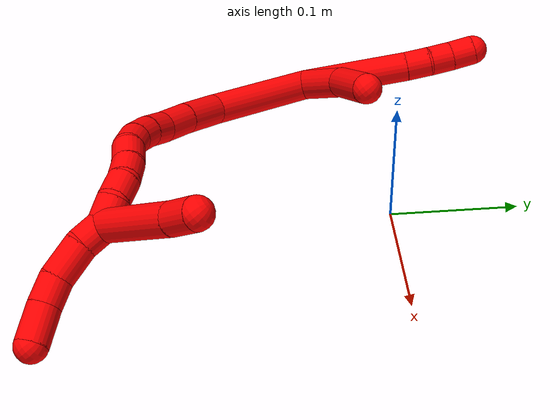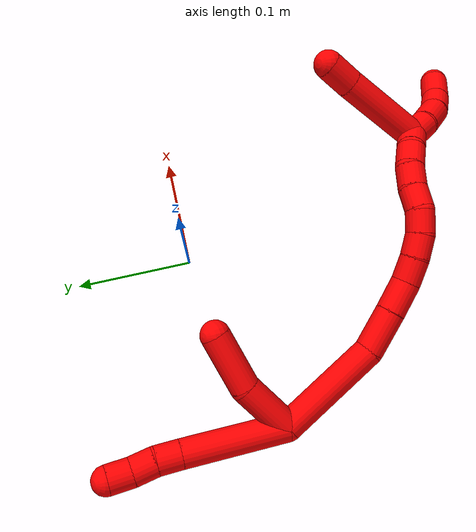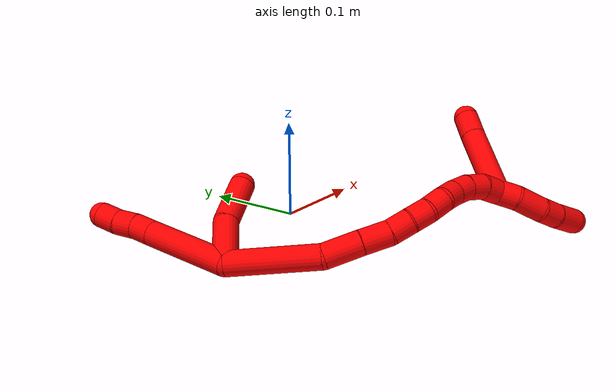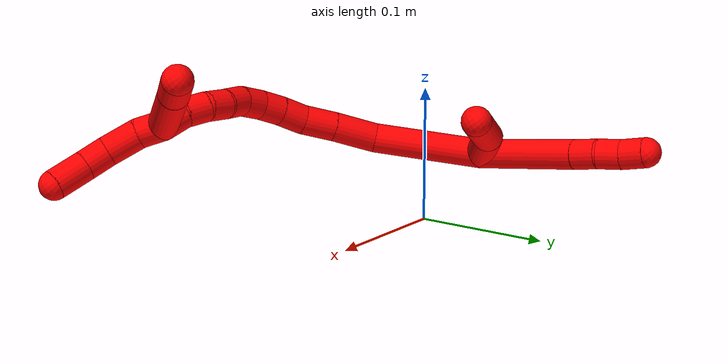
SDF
<sdf version="1.7">
 <world name="default">
  <model name="2">
   <static>0</static>
   <link name="2">
    <collision name="collision-cylinder-e_1_2_8">
     <pose>-0.006301 0.022215 0.038135 -0.527482 -0.14182 0.038355</pose>
     <geometry><cylinder><radius>0.0125</radius><length>0.089162</length></cylinder></geometry>
     <surface>
      <friction><ode><mu>1.16</mu><mu2>1.16</mu2><slip1>0</slip1><slip2>0</slip2></ode></friction>
      <contact><ode><kp>1e+06</kp><kd>1</kd><max_vel>0</max_vel><min_depth>0.001</min_depth></ode></contact>
     </surface>
    </collision>
    <visual name="visual-cylinder-e_1_2_8">
     <pose>-0.006301 0.022215 0.038135 -0.527482 -0.14182 0.038355</pose>
     <geometry><cylinder><radius>0.0125</radius><length>0.089162</length></cylinder></geometry>
     <material><ambient>1 0 0 1</ambient></material>
    </visual>
    <collision name="collision-cylinder-e_2_8_9">
     <pose>-0.01415 0.049208 0.085276 -0.487735 -0.150577 0.037533</pose>
     <geometry><cylinder><radius>0.0125</radius><length>0.020624</length></cylinder></geometry>
     <surface>
      <friction><ode><mu>1.16</mu><mu2>1.16</mu2><slip1>0</slip1><slip2>0</slip2></ode></friction>
      <contact><ode><kp>1e+06</kp><kd>1</kd><max_vel>0</max_vel><min_depth>0.001</min_depth></ode></contact>
     </surface>
    </collision>
    <visual name="visual-cylinder-e_2_8_9">
     <pose>-0.01415 0.049208 0.085276 -0.487735 -0.150577 0.037533</pose>
     <geometry><cylinder><radius>0.0125</radius><length>0.020624</length></cylinder></geometry>
     <material><ambient>1 0 0 1</ambient></material>
    </visual>
    <collision name="collision-cylinder-e_3_9_10">
     <pose>-0.018851 0.058446 0.102664 -0.489021 -0.320768 0.080682</pose>
     <geometry><cylinder><radius>0.0125</radius><length>0.02001</length></cylinder></geometry>
     <surface>
      <friction><ode><mu>1.16</mu><mu2>1.16</mu2><slip1>0</slip1><slip2>0</slip2></ode></friction>
      <contact><ode><kp>1e+06</kp><kd>1</kd><max_vel>0</max_vel><min_depth>0.001</min_depth></ode></contact>
     </surface>
    </collision>
    <visual name="visual-cylinder-e_3_9_10">
     <pose>-0.018851 0.058446 0.102664 -0.489021 -0.320768 0.080682</pose>
     <geometry><cylinder><radius>0.0125</radius><length>0.02001</length></cylinder></geometry>
     <material><ambient>1 0 0 1</ambient></material>
    </visual>
    <collision name="collision-cylinder-e_4_10_6">
     <pose>-0.023751 0.067046 0.120094 -0.429119 -0.173672 0.037936</pose>
     <geometry><cylinder><radius>0.0125</radius><length>0.020204</length></cylinder></geometry>
     <surface>
      <friction><ode><mu>1.16</mu><mu2>1.16</mu2><slip1>0</slip1><slip2>0</slip2></ode></friction>
      <contact><ode><kp>1e+06</kp><kd>1</kd><max_vel>0</max_vel><min_depth>0.001</min_depth></ode></contact>
     </surface>
    </collision>
    <visual name="visual-cylinder-e_4_10_6">
     <pose>-0.023751 0.067046 0.120094 -0.429119 -0.173672 0.037936</pose>
     <geometry><cylinder><radius>0.0125</radius><length>0.020204</length></cylinder></geometry>
     <material><ambient>1 0 0 1</ambient></material>
    </visual>
    <collision name="collision-cylinder-e_1_2_11">
     <pose>0.018332 0.007838 0.015418 -0.470315 0.814482 -0.205965</pose>
     <geometry><cylinder><radius>0.0125</radius><length>0.050406</length></cylinder></geometry>
     <surface>
      <friction><ode><mu>1.16</mu><mu2>1.16</mu2><slip1>0</slip1><slip2>0</slip2></ode></friction>
      <contact><ode><kp>1e+06</kp><kd>1</kd><max_vel>0</max_vel><min_depth>0.001</min_depth></ode></contact>
     </surface>
    </collision>
    <visual name="visual-cylinder-e_1_2_11">
     <pose>0.018332 0.007838 0.015418 -0.470315 0.814482 -0.205965</pose>
     <geometry><cylinder><radius>0.0125</radius><length>0.050406</length></cylinder></geometry>
     <material><ambient>1 0 0 1</ambient></material>
    </visual>
    <collision name="collision-cylinder-e_2_11_5">
     <pose>0.05884 0.02224 0.039781 -0.633077 1.10689 -0.399366</pose>
     <geometry><cylinder><radius>0.0125</radius><length>0.049594</length></cylinder></geometry>
     <surface>
      <friction><ode><mu>1.16</mu><mu2>1.16</mu2><slip1>0</slip1><slip2>0</slip2></ode></friction>
      <contact><ode><kp>1e+06</kp><kd>1</kd><max_vel>0</max_vel><min_depth>0.001</min_depth></ode></contact>
     </surface>
    </collision>
    <visual name="visual-cylinder-e_2_11_5">
     <pose>0.05884 0.02224 0.039781 -0.633077 1.10689 -0.399366</pose>
     <geometry><cylinder><radius>0.0125</radius><length>0.049594</length></cylinder></geometry>
     <material><ambient>1 0 0 1</ambient></material>
    </visual>
    <collision name="collision-cylinder-e_1_2_12">
     <pose>0.028485 -0.01777 -0.031369 2.62619 0.668681 1.84349</pose>
     <geometry><cylinder><radius>0.0125</radius><length>0.091894</length></cylinder></geometry>
     <surface>
      <friction><ode><mu>1.16</mu><mu2>1.16</mu2><slip1>0</slip1><slip2>0</slip2></ode></friction>
      <contact><ode><kp>1e+06</kp><kd>1</kd><max_vel>0</max_vel><min_depth>0.001</min_depth></ode></contact>
     </surface>
    </collision>
    <visual name="visual-cylinder-e_1_2_12">
     <pose>0.028485 -0.01777 -0.031369 2.62619 0.668681 1.84349</pose>
     <geometry><cylinder><radius>0.0125</radius><length>0.091894</length></cylinder></geometry>
     <material><ambient>1 0 0 1</ambient></material>
    </visual>
    <collision name="collision-cylinder-e_2_12_13">
     <pose>0.072766 -0.040877 -0.071052 2.57086 1.01181 2.16757</pose>
     <geometry><cylinder><radius>0.0125</radius><length>0.037264</length></cylinder></geometry>
     <surface>
      <friction><ode><mu>1.16</mu><mu2>1.16</mu2><slip1>0</slip1><slip2>0</slip2></ode></friction>
      <contact><ode><kp>1e+06</kp><kd>1</kd><max_vel>0</max_vel><min_depth>0.001</min_depth></ode></contact>
     </surface>
    </collision>
    <visual name="visual-cylinder-e_2_12_13">
     <pose>0.072766 -0.040877 -0.071052 2.57086 1.01181 2.16757</pose>
     <geometry><cylinder><radius>0.0125</radius><length>0.037264</length></cylinder></geometry>
     <material><ambient>1 0 0 1</ambient></material>
    </visual>
    <collision name="collision-cylinder-e_3_13_14">
     <pose>0.100518 -0.049568 -0.085862 2.66503 1.02209 2.32404</pose>
     <geometry><cylinder><radius>0.0125</radius><length>0.028027</length></cylinder></geometry>
     <surface>
      <friction><ode><mu>1.16</mu><mu2>1.16</mu2><slip1>0</slip1><slip2>0</slip2></ode></friction>
      <contact><ode><kp>1e+06</kp><kd>1</kd><max_vel>0</max_vel><min_depth>0.001</min_depth></ode></contact>
     </surface>
    </collision>
    <visual name="visual-cylinder-e_3_13_14">
     <pose>0.100518 -0.049568 -0.085862 2.66503 1.02209 2.32404</pose>
     <geometry><cylinder><radius>0.0125</radius><length>0.028027</length></cylinder></geometry>
     <material><ambient>1 0 0 1</ambient></material>
    </visual>
    <collision name="collision-cylinder-e_4_14_15">
     <pose>0.122589 -0.055574 -0.095311 2.40993 1.19675 2.11774</pose>
     <geometry><cylinder><radius>0.0125</radius><length>0.021733</length></cylinder></geometry>
     <surface>
      <friction><ode><mu>1.16</mu><mu2>1.16</mu2><slip1>0</slip1><slip2>0</slip2></ode></friction>
      <contact><ode><kp>1e+06</kp><kd>1</kd><max_vel>0</max_vel><min_depth>0.001</min_depth></ode></contact>
     </surface>
    </collision>
    <visual name="visual-cylinder-e_4_14_15">
     <pose>0.122589 -0.055574 -0.095311 2.40993 1.19675 2.11774</pose>
     <geometry><cylinder><radius>0.0125</radius><length>0.021733</length></cylinder></geometry>
     <material><ambient>1 0 0 1</ambient></material>
    </visual>
    <collision name="collision-cylinder-e_5_15_16">
     <pose>0.142469 -0.059374 -0.100936 2.73573 1.2814 2.60307</pose>
     <geometry><cylinder><radius>0.0125</radius><length>0.020375</length></cylinder></geometry>
     <surface>
      <friction><ode><mu>1.16</mu><mu2>1.16</mu2><slip1>0</slip1><slip2>0</slip2></ode></friction>
      <contact><ode><kp>1e+06</kp><kd>1</kd><max_vel>0</max_vel><min_depth>0.001</min_depth></ode></contact>
     </surface>
    </collision>
    <visual name="visual-cylinder-e_5_15_16">
     <pose>0.142469 -0.059374 -0.100936 2.73573 1.2814 2.60307</pose>
     <geometry><cylinder><radius>0.0125</radius><length>0.020375</length></cylinder></geometry>
     <material><ambient>1 0 0 1</ambient></material>
    </visual>
    <collision name="collision-cylinder-e_6_16_17">
     <pose>0.162129 -0.059425 -0.105053 -2.49269 1.38941 -2.37433</pose>
     <geometry><cylinder><radius>0.0125</radius><length>0.020123</length></cylinder></geometry>
     <surface>
      <friction><ode><mu>1.16</mu><mu2>1.16</mu2><slip1>0</slip1><slip2>0</slip2></ode></friction>
      <contact><ode><kp>1e+06</kp><kd>1</kd><max_vel>0</max_vel><min_depth>0.001</min_depth></ode></contact>
     </surface>
    </collision>
    <visual name="visual-cylinder-e_6_16_17">
     <pose>0.162129 -0.059425 -0.105053 -2.49269 1.38941 -2.37433</pose>
     <geometry><cylinder><radius>0.0125</radius><length>0.020123</length></cylinder></geometry>
     <material><ambient>1 0 0 1</ambient></material>
    </visual>
    <collision name="collision-cylinder-e_7_17_18">
     <pose>0.180998 -0.053976 -0.107784 -1.8578 1.10248 -1.37662</pose>
     <geometry><cylinder><radius>0.0125</radius><length>0.020109</length></cylinder></geometry>
     <surface>
      <friction><ode><mu>1.16</mu><mu2>1.16</mu2><slip1>0</slip1><slip2>0</slip2></ode></friction>
      <contact><ode><kp>1e+06</kp><kd>1</kd><max_vel>0</max_vel><min_depth>0.001</min_depth></ode></contact>
     </surface>
    </collision>
    <visual name="visual-cylinder-e_7_17_18">
     <pose>0.180998 -0.053976 -0.107784 -1.8578 1.10248 -1.37662</pose>
     <geometry><cylinder><radius>0.0125</radius><length>0.020109</length></cylinder></geometry>
     <material><ambient>1 0 0 1</ambient></material>
    </visual>
    <collision name="collision-cylinder-e_8_18_19">
     <pose>0.199076 -0.046384 -0.111675 -2.24847 1.14253 -1.86108</pose>
     <geometry><cylinder><radius>0.0125</radius><length>0.020021</length></cylinder></geometry>
     <surface>
      <friction><ode><mu>1.16</mu><mu2>1.16</mu2><slip1>0</slip1><slip2>0</slip2></ode></friction>
      <contact><ode><kp>1e+06</kp><kd>1</kd><max_vel>0</max_vel><min_depth>0.001</min_depth></ode></contact>
     </surface>
    </collision>
    <visual name="visual-cylinder-e_8_18_19">
     <pose>0.199076 -0.046384 -0.111675 -2.24847 1.14253 -1.86108</pose>
     <geometry><cylinder><radius>0.0125</radius><length>0.020021</length></cylinder></geometry>
     <material><ambient>1 0 0 1</ambient></material>
    </visual>
    <collision name="collision-cylinder-e_9_19_20">
     <pose>0.216312 -0.040238 -0.119425 -2.62717 0.942327 -2.18832</pose>
     <geometry><cylinder><radius>0.0125</radius><length>0.020099</length></cylinder></geometry>
     <surface>
      <friction><ode><mu>1.16</mu><mu2>1.16</mu2><slip1>0</slip1><slip2>0</slip2></ode></friction>
      <contact><ode><kp>1e+06</kp><kd>1</kd><max_vel>0</max_vel><min_depth>0.001</min_depth></ode></contact>
     </surface>
    </collision>
    <visual name="visual-cylinder-e_9_19_20">
     <pose>0.216312 -0.040238 -0.119425 -2.62717 0.942327 -2.18832</pose>
     <geometry><cylinder><radius>0.0125</radius><length>0.020099</length></cylinder></geometry>
     <material><ambient>1 0 0 1</ambient></material>
    </visual>
    <collision name="collision-cylinder-e_10_20_1">
     <pose>0.230565 -0.032996 -0.131445 -2.57907 0.645601 -1.71676</pose>
     <geometry><cylinder><radius>0.0125</radius><length>0.020355</length></cylinder></geometry>
     <surface>
      <friction><ode><mu>1.16</mu><mu2>1.16</mu2><slip1>0</slip1><slip2>0</slip2></ode></friction>
      <contact><ode><kp>1e+06</kp><kd>1</kd><max_vel>0</max_vel><min_depth>0.001</min_depth></ode></contact>
     </surface>
    </collision>
    <visual name="visual-cylinder-e_10_20_1">
     <pose>0.230565 -0.032996 -0.131445 -2.57907 0.645601 -1.71676</pose>
     <geometry><cylinder><radius>0.0125</radius><length>0.020355</length></cylinder></geometry>
     <material><ambient>1 0 0 1</ambient></material>
    </visual>
    <collision name="collision-cylinder-e_1_1_21">
     <pose>0.258638 -0.016852 -0.110565 -0.402252 0.629067 -0.132465</pose>
     <geometry><cylinder><radius>0.0125</radius><length>0.074611</length></cylinder></geometry>
     <surface>
      <friction><ode><mu>1.16</mu><mu2>1.16</mu2><slip1>0</slip1><slip2>0</slip2></ode></friction>
      <contact><ode><kp>1e+06</kp><kd>1</kd><max_vel>0</max_vel><min_depth>0.001</min_depth></ode></contact>
     </surface>
    </collision>
    <visual name="visual-cylinder-e_1_1_21">
     <pose>0.258638 -0.016852 -0.110565 -0.402252 0.629067 -0.132465</pose>
     <geometry><cylinder><radius>0.0125</radius><length>0.074611</length></cylinder></geometry>
     <material><ambient>1 0 0 1</ambient></material>
    </visual>
    <collision name="collision-cylinder-e_2_21_4">
     <pose>0.28817 -0.002008 -0.073089 -0.302617 0.640024 -0.100975</pose>
     <geometry><cylinder><radius>0.0125</radius><length>0.025389</length></cylinder></geometry>
     <surface>
      <friction><ode><mu>1.16</mu><mu2>1.16</mu2><slip1>0</slip1><slip2>0</slip2></ode></friction>
      <contact><ode><kp>1e+06</kp><kd>1</kd><max_vel>0</max_vel><min_depth>0.001</min_depth></ode></contact>
     </surface>
    </collision>
    <visual name="visual-cylinder-e_2_21_4">
     <pose>0.28817 -0.002008 -0.073089 -0.302617 0.640024 -0.100975</pose>
     <geometry><cylinder><radius>0.0125</radius><length>0.025389</length></cylinder></geometry>
     <material><ambient>1 0 0 1</ambient></material>
    </visual>
    <collision name="collision-cylinder-e_1_1_22">
     <pose>0.241511 -0.028761 -0.147373 3.13052 0.489557 3.09728</pose>
     <geometry><cylinder><radius>0.0125</radius><length>0.020513</length></cylinder></geometry>
     <surface>
      <friction><ode><mu>1.16</mu><mu2>1.16</mu2><slip1>0</slip1><slip2>0</slip2></ode></friction>
      <contact><ode><kp>1e+06</kp><kd>1</kd><max_vel>0</max_vel><min_depth>0.001</min_depth></ode></contact>
     </surface>
    </collision>
    <visual name="visual-cylinder-e_1_1_22">
     <pose>0.241511 -0.028761 -0.147373 3.13052 0.489557 3.09728</pose>
     <geometry><cylinder><radius>0.0125</radius><length>0.020513</length></cylinder></geometry>
     <material><ambient>1 0 0 1</ambient></material>
    </visual>
    <collision name="collision-cylinder-e_2_22_23">
     <pose>0.252668 -0.025595 -0.169018 -2.88785 0.453054 -2.13063</pose>
     <geometry><cylinder><radius>0.0125</radius><length>0.02894</length></cylinder></geometry>
     <surface>
      <friction><ode><mu>1.16</mu><mu2>1.16</mu2><slip1>0</slip1><slip2>0</slip2></ode></friction>
      <contact><ode><kp>1e+06</kp><kd>1</kd><max_vel>0</max_vel><min_depth>0.001</min_depth></ode></contact>
     </surface>
    </collision>
    <visual name="visual-cylinder-e_2_22_23">
     <pose>0.252668 -0.025595 -0.169018 -2.88785 0.453054 -2.13063</pose>
     <geometry><cylinder><radius>0.0125</radius><length>0.02894</length></cylinder></geometry>
     <material><ambient>1 0 0 1</ambient></material>
    </visual>
    <collision name="collision-cylinder-e_3_23_24">
     <pose>0.264969 -0.017873 -0.189305 -2.61662 0.591115 -1.69553</pose>
     <geometry><cylinder><radius>0.0125</radius><length>0.021416</length></cylinder></geometry>
     <surface>
      <friction><ode><mu>1.16</mu><mu2>1.16</mu2><slip1>0</slip1><slip2>0</slip2></ode></friction>
      <contact><ode><kp>1e+06</kp><kd>1</kd><max_vel>0</max_vel><min_depth>0.001</min_depth></ode></contact>
     </surface>
    </collision>
    <visual name="visual-cylinder-e_3_23_24">
     <pose>0.264969 -0.017873 -0.189305 -2.61662 0.591115 -1.69553</pose>
     <geometry><cylinder><radius>0.0125</radius><length>0.021416</length></cylinder></geometry>
     <material><ambient>1 0 0 1</ambient></material>
    </visual>
    <collision name="collision-cylinder-e_4_24_3">
     <pose>0.280078 -0.006532 -0.206009 -2.48915 0.678479 -1.61296</pose>
     <geometry><cylinder><radius>0.0125</radius><length>0.029132</length></cylinder></geometry>
     <surface>
      <friction><ode><mu>1.16</mu><mu2>1.16</mu2><slip1>0</slip1><slip2>0</slip2></ode></friction>
      <contact><ode><kp>1e+06</kp><kd>1</kd><max_vel>0</max_vel><min_depth>0.001</min_depth></ode></contact>
     </surface>
    </collision>
    <visual name="visual-cylinder-e_4_24_3">
     <pose>0.280078 -0.006532 -0.206009 -2.48915 0.678479 -1.61296</pose>
     <geometry><cylinder><radius>0.0125</radius><length>0.029132</length></cylinder></geometry>
     <material><ambient>1 0 0 1</ambient></material>
    </visual>
    <collision name="collision-sphere-3">
     <pose>0.289219 0.000353 -0.21502 0 -0 0</pose>
     <geometry><sphere><radius>0.0125</radius></sphere></geometry>
     <surface>
      <friction><ode><mu>1.16</mu><mu2>1.16</mu2><slip1>0</slip1><slip2>0</slip2></ode></friction>
      <contact><ode><kp>1e+06</kp><kd>1</kd><max_vel>0</max_vel><min_depth>0.001</min_depth></ode></contact>
     </surface>
    </collision>
    <visual name="visual-sphere-3">
     <pose>0.289219 0.000353 -0.21502 0 -0 0</pose>
     <geometry><sphere><radius>0.0125</radius></sphere></geometry>
     <material><ambient>1 0 0 1</ambient></material>
    </visual>
    <collision name="collision-sphere-24">
     <pose>0.270936 -0.013417 -0.196999 0 -0 0</pose>
     <geometry><sphere><radius>0.0125</radius></sphere></geometry>
     <surface>
      <friction><ode><mu>1.16</mu><mu2>1.16</mu2><slip1>0</slip1><slip2>0</slip2></ode></friction>
      <contact><ode><kp>1e+06</kp><kd>1</kd><max_vel>0</max_vel><min_depth>0.001</min_depth></ode></contact>
     </surface>
    </collision>
    <visual name="visual-sphere-24">
     <pose>0.270936 -0.013417 -0.196999 0 -0 0</pose>
     <geometry><sphere><radius>0.0125</radius></sphere></geometry>
     <material><ambient>1 0 0 1</ambient></material>
    </visual>
    <collision name="collision-sphere-23">
     <pose>0.259001 -0.022329 -0.181611 0 -0 0</pose>
     <geometry><sphere><radius>0.0125</radius></sphere></geometry>
     <surface>
      <friction><ode><mu>1.16</mu><mu2>1.16</mu2><slip1>0</slip1><slip2>0</slip2></ode></friction>
      <contact><ode><kp>1e+06</kp><kd>1</kd><max_vel>0</max_vel><min_depth>0.001</min_depth></ode></contact>
     </surface>
    </collision>
    <visual name="visual-sphere-23">
     <pose>0.259001 -0.022329 -0.181611 0 -0 0</pose>
     <geometry><sphere><radius>0.0125</radius></sphere></geometry>
     <material><ambient>1 0 0 1</ambient></material>
    </visual>
    <collision name="collision-sphere-22">
     <pose>0.246334 -0.028861 -0.156424 0 -0 0</pose>
     <geometry><sphere><radius>0.0125</radius></sphere></geometry>
     <surface>
      <friction><ode><mu>1.16</mu><mu2>1.16</mu2><slip1>0</slip1><slip2>0</slip2></ode></friction>
      <contact><ode><kp>1e+06</kp><kd>1</kd><max_vel>0</max_vel><min_depth>0.001</min_depth></ode></contact>
     </surface>
    </collision>
    <visual name="visual-sphere-22">
     <pose>0.246334 -0.028861 -0.156424 0 -0 0</pose>
     <geometry><sphere><radius>0.0125</radius></sphere></geometry>
     <material><ambient>1 0 0 1</ambient></material>
    </visual>
    <collision name="collision-sphere-4">
     <pose>0.295751 0.001026 -0.06337 0 -0 0</pose>
     <geometry><sphere><radius>0.0125</radius></sphere></geometry>
     <surface>
      <friction><ode><mu>1.16</mu><mu2>1.16</mu2><slip1>0</slip1><slip2>0</slip2></ode></friction>
      <contact><ode><kp>1e+06</kp><kd>1</kd><max_vel>0</max_vel><min_depth>0.001</min_depth></ode></contact>
     </surface>
    </collision>
    <visual name="visual-sphere-4">
     <pose>0.295751 0.001026 -0.06337 0 -0 0</pose>
     <geometry><sphere><radius>0.0125</radius></sphere></geometry>
     <material><ambient>1 0 0 1</ambient></material>
    </visual>
    <collision name="collision-sphere-21">
     <pose>0.280588 -0.005042 -0.082809 0 -0 0</pose>
     <geometry><sphere><radius>0.0125</radius></sphere></geometry>
     <surface>
      <friction><ode><mu>1.16</mu><mu2>1.16</mu2><slip1>0</slip1><slip2>0</slip2></ode></friction>
      <contact><ode><kp>1e+06</kp><kd>1</kd><max_vel>0</max_vel><min_depth>0.001</min_depth></ode></contact>
     </surface>
    </collision>
    <visual name="visual-sphere-21">
     <pose>0.280588 -0.005042 -0.082809 0 -0 0</pose>
     <geometry><sphere><radius>0.0125</radius></sphere></geometry>
     <material><ambient>1 0 0 1</ambient></material>
    </visual>
    <collision name="collision-sphere-1">
     <pose>0.236688 -0.028661 -0.138322 0 -0 0</pose>
     <geometry><sphere><radius>0.0125</radius></sphere></geometry>
     <surface>
      <friction><ode><mu>1.16</mu><mu2>1.16</mu2><slip1>0</slip1><slip2>0</slip2></ode></friction>
      <contact><ode><kp>1e+06</kp><kd>1</kd><max_vel>0</max_vel><min_depth>0.001</min_depth></ode></contact>
     </surface>
    </collision>
    <visual name="visual-sphere-1">
     <pose>0.236688 -0.028661 -0.138322 0 -0 0</pose>
     <geometry><sphere><radius>0.0125</radius></sphere></geometry>
     <material><ambient>1 0 0 1</ambient></material>
    </visual>
    <collision name="collision-sphere-11">
     <pose>0.036664 0.015676 0.030836 0 -0 0</pose>
     <geometry><sphere><radius>0.0125</radius></sphere></geometry>
     <surface>
      <friction><ode><mu>1.16</mu><mu2>1.16</mu2><slip1>0</slip1><slip2>0</slip2></ode></friction>
      <contact><ode><kp>1e+06</kp><kd>1</kd><max_vel>0</max_vel><min_depth>0.001</min_depth></ode></contact>
     </surface>
    </collision>
    <visual name="visual-sphere-11">
     <pose>0.036664 0.015676 0.030836 0 -0 0</pose>
     <geometry><sphere><radius>0.0125</radius></sphere></geometry>
     <material><ambient>1 0 0 1</ambient></material>
    </visual>
    <collision name="collision-sphere-6">
     <pose>-0.025497 0.071186 0.129142 0 -0 0</pose>
     <geometry><sphere><radius>0.0125</radius></sphere></geometry>
     <surface>
      <friction><ode><mu>1.16</mu><mu2>1.16</mu2><slip1>0</slip1><slip2>0</slip2></ode></friction>
      <contact><ode><kp>1e+06</kp><kd>1</kd><max_vel>0</max_vel><min_depth>0.001</min_depth></ode></contact>
     </surface>
    </collision>
    <visual name="visual-sphere-6">
     <pose>-0.025497 0.071186 0.129142 0 -0 0</pose>
     <geometry><sphere><radius>0.0125</radius></sphere></geometry>
     <material><ambient>1 0 0 1</ambient></material>
    </visual>
    <collision name="collision-sphere-10">
     <pose>-0.022005 0.062906 0.111046 0 -0 0</pose>
     <geometry><sphere><radius>0.0125</radius></sphere></geometry>
     <surface>
      <friction><ode><mu>1.16</mu><mu2>1.16</mu2><slip1>0</slip1><slip2>0</slip2></ode></friction>
      <contact><ode><kp>1e+06</kp><kd>1</kd><max_vel>0</max_vel><min_depth>0.001</min_depth></ode></contact>
     </surface>
    </collision>
    <visual name="visual-sphere-10">
     <pose>-0.022005 0.062906 0.111046 0 -0 0</pose>
     <geometry><sphere><radius>0.0125</radius></sphere></geometry>
     <material><ambient>1 0 0 1</ambient></material>
    </visual>
    <collision name="collision-sphere-9">
     <pose>-0.015696 0.053985 0.094282 0 -0 0</pose>
     <geometry><sphere><radius>0.0125</radius></sphere></geometry>
     <surface>
      <friction><ode><mu>1.16</mu><mu2>1.16</mu2><slip1>0</slip1><slip2>0</slip2></ode></friction>
      <contact><ode><kp>1e+06</kp><kd>1</kd><max_vel>0</max_vel><min_depth>0.001</min_depth></ode></contact>
     </surface>
    </collision>
    <visual name="visual-sphere-9">
     <pose>-0.015696 0.053985 0.094282 0 -0 0</pose>
     <geometry><sphere><radius>0.0125</radius></sphere></geometry>
     <material><ambient>1 0 0 1</ambient></material>
    </visual>
    <collision name="collision-sphere-2">
     <geometry><sphere><radius>0.0125</radius></sphere></geometry>
     <surface>
      <friction><ode><mu>1.16</mu><mu2>1.16</mu2><slip1>0</slip1><slip2>0</slip2></ode></friction>
      <contact><ode><kp>1e+06</kp><kd>1</kd><max_vel>0</max_vel><min_depth>0.001</min_depth></ode></contact>
     </surface>
    </collision>
    <visual name="visual-sphere-2">
     <geometry><sphere><radius>0.0125</radius></sphere></geometry>
     <material><ambient>1 0 0 1</ambient></material>
    </visual>
    <collision name="collision-sphere-19">
     <pose>0.208182 -0.043145 -0.114282 0 -0 0</pose>
     <geometry><sphere><radius>0.0125</radius></sphere></geometry>
     <surface>
      <friction><ode><mu>1.16</mu><mu2>1.16</mu2><slip1>0</slip1><slip2>0</slip2></ode></friction>
      <contact><ode><kp>1e+06</kp><kd>1</kd><max_vel>0</max_vel><min_depth>0.001</min_depth></ode></contact>
     </surface>
    </collision>
    <visual name="visual-sphere-19">
     <pose>0.208182 -0.043145 -0.114282 0 -0 0</pose>
     <geometry><sphere><radius>0.0125</radius></sphere></geometry>
     <material><ambient>1 0 0 1</ambient></material>
    </visual>
    <collision name="collision-sphere-8">
     <pose>-0.012603 0.04443 0.076269 0 -0 0</pose>
     <geometry><sphere><radius>0.0125</radius></sphere></geometry>
     <surface>
      <friction><ode><mu>1.16</mu><mu2>1.16</mu2><slip1>0</slip1><slip2>0</slip2></ode></friction>
      <contact><ode><kp>1e+06</kp><kd>1</kd><max_vel>0</max_vel><min_depth>0.001</min_depth></ode></contact>
     </surface>
    </collision>
    <visual name="visual-sphere-8">
     <pose>-0.012603 0.04443 0.076269 0 -0 0</pose>
     <geometry><sphere><radius>0.0125</radius></sphere></geometry>
     <material><ambient>1 0 0 1</ambient></material>
    </visual>
    <collision name="collision-sphere-5">
     <pose>0.081016 0.028804 0.048726 0 -0 0</pose>
     <geometry><sphere><radius>0.0125</radius></sphere></geometry>
     <surface>
      <friction><ode><mu>1.16</mu><mu2>1.16</mu2><slip1>0</slip1><slip2>0</slip2></ode></friction>
      <contact><ode><kp>1e+06</kp><kd>1</kd><max_vel>0</max_vel><min_depth>0.001</min_depth></ode></contact>
     </surface>
    </collision>
    <visual name="visual-sphere-5">
     <pose>0.081016 0.028804 0.048726 0 -0 0</pose>
     <geometry><sphere><radius>0.0125</radius></sphere></geometry>
     <material><ambient>1 0 0 1</ambient></material>
    </visual>
    <collision name="collision-sphere-12">
     <pose>0.05697 -0.035539 -0.062737 0 -0 0</pose>
     <geometry><sphere><radius>0.0125</radius></sphere></geometry>
     <surface>
      <friction><ode><mu>1.16</mu><mu2>1.16</mu2><slip1>0</slip1><slip2>0</slip2></ode></friction>
      <contact><ode><kp>1e+06</kp><kd>1</kd><max_vel>0</max_vel><min_depth>0.001</min_depth></ode></contact>
     </surface>
    </collision>
    <visual name="visual-sphere-12">
     <pose>0.05697 -0.035539 -0.062737 0 -0 0</pose>
     <geometry><sphere><radius>0.0125</radius></sphere></geometry>
     <material><ambient>1 0 0 1</ambient></material>
    </visual>
    <collision name="collision-sphere-13">
     <pose>0.088562 -0.046215 -0.079367 0 -0 0</pose>
     <geometry><sphere><radius>0.0125</radius></sphere></geometry>
     <surface>
      <friction><ode><mu>1.16</mu><mu2>1.16</mu2><slip1>0</slip1><slip2>0</slip2></ode></friction>
      <contact><ode><kp>1e+06</kp><kd>1</kd><max_vel>0</max_vel><min_depth>0.001</min_depth></ode></contact>
     </surface>
    </collision>
    <visual name="visual-sphere-13">
     <pose>0.088562 -0.046215 -0.079367 0 -0 0</pose>
     <geometry><sphere><radius>0.0125</radius></sphere></geometry>
     <material><ambient>1 0 0 1</ambient></material>
    </visual>
    <collision name="collision-sphere-14">
     <pose>0.112474 -0.052921 -0.092356 0 -0 0</pose>
     <geometry><sphere><radius>0.0125</radius></sphere></geometry>
     <surface>
      <friction><ode><mu>1.16</mu><mu2>1.16</mu2><slip1>0</slip1><slip2>0</slip2></ode></friction>
      <contact><ode><kp>1e+06</kp><kd>1</kd><max_vel>0</max_vel><min_depth>0.001</min_depth></ode></contact>
     </surface>
    </collision>
    <visual name="visual-sphere-14">
     <pose>0.112474 -0.052921 -0.092356 0 -0 0</pose>
     <geometry><sphere><radius>0.0125</radius></sphere></geometry>
     <material><ambient>1 0 0 1</ambient></material>
    </visual>
    <collision name="collision-sphere-15">
     <pose>0.132705 -0.058226 -0.098265 0 -0 0</pose>
     <geometry><sphere><radius>0.0125</radius></sphere></geometry>
     <surface>
      <friction><ode><mu>1.16</mu><mu2>1.16</mu2><slip1>0</slip1><slip2>0</slip2></ode></friction>
      <contact><ode><kp>1e+06</kp><kd>1</kd><max_vel>0</max_vel><min_depth>0.001</min_depth></ode></contact>
     </surface>
    </collision>
    <visual name="visual-sphere-15">
     <pose>0.132705 -0.058226 -0.098265 0 -0 0</pose>
     <geometry><sphere><radius>0.0125</radius></sphere></geometry>
     <material><ambient>1 0 0 1</ambient></material>
    </visual>
    <collision name="collision-sphere-16">
     <pose>0.152233 -0.060522 -0.103607 0 -0 0</pose>
     <geometry><sphere><radius>0.0125</radius></sphere></geometry>
     <surface>
      <friction><ode><mu>1.16</mu><mu2>1.16</mu2><slip1>0</slip1><slip2>0</slip2></ode></friction>
      <contact><ode><kp>1e+06</kp><kd>1</kd><max_vel>0</max_vel><min_depth>0.001</min_depth></ode></contact>
     </surface>
    </collision>
    <visual name="visual-sphere-16">
     <pose>0.152233 -0.060522 -0.103607 0 -0 0</pose>
     <geometry><sphere><radius>0.0125</radius></sphere></geometry>
     <material><ambient>1 0 0 1</ambient></material>
    </visual>
    <collision name="collision-sphere-17">
     <pose>0.172026 -0.058328 -0.106499 0 -0 0</pose>
     <geometry><sphere><radius>0.0125</radius></sphere></geometry>
     <surface>
      <friction><ode><mu>1.16</mu><mu2>1.16</mu2><slip1>0</slip1><slip2>0</slip2></ode></friction>
      <contact><ode><kp>1e+06</kp><kd>1</kd><max_vel>0</max_vel><min_depth>0.001</min_depth></ode></contact>
     </surface>
    </collision>
    <visual name="visual-sphere-17">
     <pose>0.172026 -0.058328 -0.106499 0 -0 0</pose>
     <geometry><sphere><radius>0.0125</radius></sphere></geometry>
     <material><ambient>1 0 0 1</ambient></material>
    </visual>
    <collision name="collision-sphere-18">
     <pose>0.18997 -0.049623 -0.109069 0 -0 0</pose>
     <geometry><sphere><radius>0.0125</radius></sphere></geometry>
     <surface>
      <friction><ode><mu>1.16</mu><mu2>1.16</mu2><slip1>0</slip1><slip2>0</slip2></ode></friction>
      <contact><ode><kp>1e+06</kp><kd>1</kd><max_vel>0</max_vel><min_depth>0.001</min_depth></ode></contact>
     </surface>
    </collision>
    <visual name="visual-sphere-18">
     <pose>0.18997 -0.049623 -0.109069 0 -0 0</pose>
     <geometry><sphere><radius>0.0125</radius></sphere></geometry>
     <material><ambient>1 0 0 1</ambient></material>
    </visual>
    <collision name="collision-sphere-20">
     <pose>0.224441 -0.037331 -0.124569 0 -0 0</pose>
     <geometry><sphere><radius>0.0125</radius></sphere></geometry>
     <surface>
      <friction><ode><mu>1.16</mu><mu2>1.16</mu2><slip1>0</slip1><slip2>0</slip2></ode></friction>
      <contact><ode><kp>1e+06</kp><kd>1</kd><max_vel>0</max_vel><min_depth>0.001</min_depth></ode></contact>
     </surface>
    </collision>
    <visual name="visual-sphere-20">
     <pose>0.224441 -0.037331 -0.124569 0 -0 0</pose>
     <geometry><sphere><radius>0.0125</radius></sphere></geometry>
     <material><ambient>1 0 0 1</ambient></material>
    </visual>
    <inertial>
     <pose>0.117983 -0.010463 -0.052458 0 -0 0</pose>
     <mass>0.75</mass>
     <inertia>
      <ixx>0.000162</ixx>
      <ixy>0</ixy>
      <ixz>0</ixz>
      <iyy>0.000228</iyy>
      <iyz>0</iyz>
      <izz>-0.000123</izz>
     </inertia>
    </inertial>
   </link>
   <pose>-0.163755 -0.050262 0.011487 -0.828918 -0.466258 -0.189817</pose>
  </model>
 </world>
</sdf>
